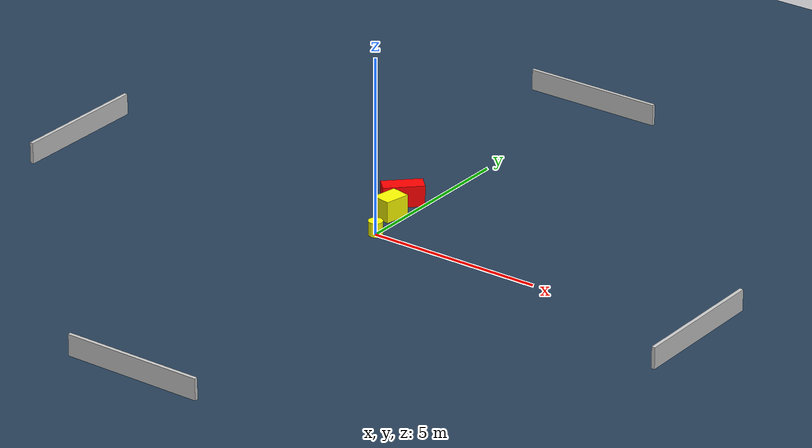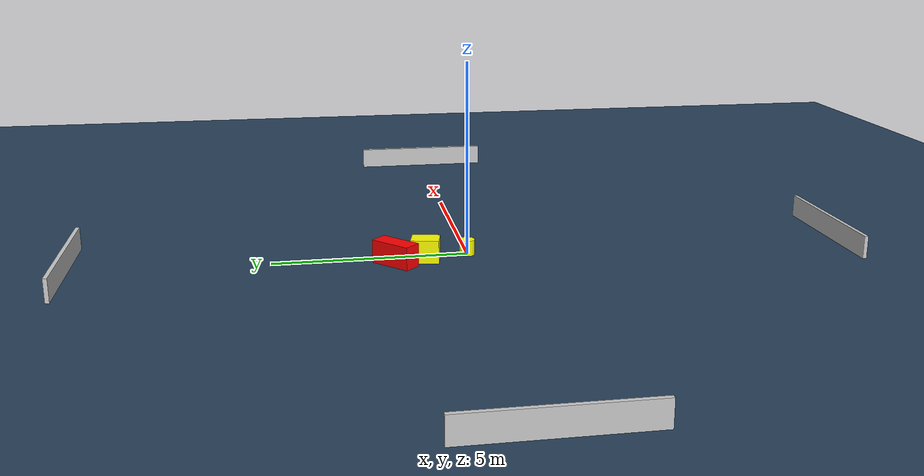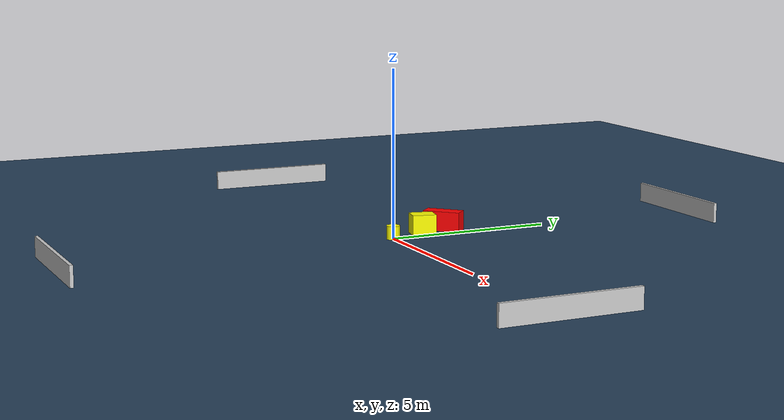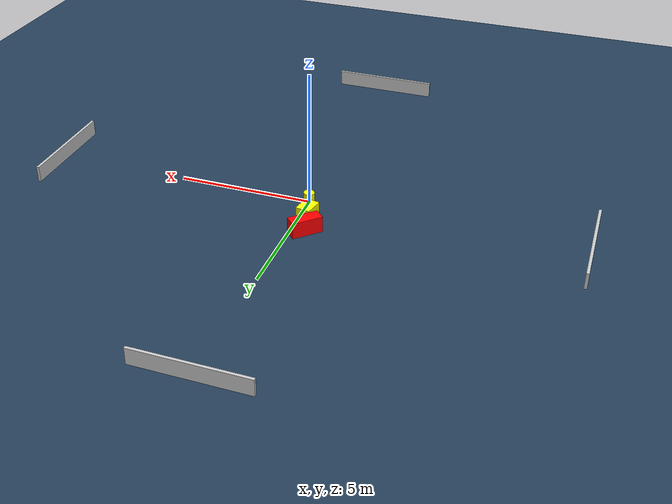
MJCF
<?xml version="1.0" ?>
<mujoco model="generated_environment">
  <option timestep="0.01" integrator="RK4" cone="elliptic"/>
  <default>
    <geom density="1"/>
  </default>
  <asset>
    <texture builtin="gradient" height="3072" name="skybox" rgb1="0.3 0.5 0.7" rgb2="0 0 0" type="skybox" width="512"/>
    <texture builtin="checker" height="300" name="groundplane" rgb1="0.2 0.3 0.4" rgb2="0.1 0.2 0.3" type="2d" width="300"/>
    <material name="groundplane" reflectance="0.2" texrepeat="5 5" texture="groundplane"/>
  </asset>
  <worldbody>
    <light dir="0 0 -1" directional="true" pos="0 0 1.5"/>
    <geom condim="3" friction="0.5 0.005 0.001" material="groundplane" name="floor" pos="0 0 0" size="0 0 0.05" type="plane"/>
    <body name="walls">
      <geom name="wall_1" condim="4" pos="-10.0 0.0 0.3" rgba="0.800000011920929 0.800000011920929 0.800000011920929 1.0" size="0.05 2.0 0.3" type="box"/>
      <geom name="wall_2" condim="4" pos="10.0 0.0 0.3" rgba="0.800000011920929 0.800000011920929 0.800000011920929 1.0" size="0.05 2.0 0.3" type="box"/>
      <geom name="wall_3" condim="4" pos="0.0 -10.0 0.3" rgba="0.800000011920929 0.800000011920929 0.800000011920929 1.0" size="2.0 0.05 0.3" type="box"/>
      <geom name="wall_4" condim="4" pos="0.0 10.0 0.3" rgba="0.800000011920929 0.800000011920929 0.800000011920929 1.0" size="2.0 0.05 0.3" type="box"/>
    </body>
    <body name="robot">
      <joint name="joint_x" type="slide" pos="0 0 0" axis="1 0 0"/>
      <joint name="joint_y" type="slide" pos="0 0 0" axis="0 1 0"/>
      <geom name="robot" type="cylinder" pos="0.0 0.0 0.2" size="0.2 0.2 0.0" mass="5.0" friction="1.0 0.005 0.0001" condim="4" rgba="1.0 1.0 0.0 1.0"/>
    </body>
    <body name="obstacle_1_movable">
      <geom name="obstacle_1_movable" condim="4" pos="-0.33933400122744606 1.1211316636899562 0.3" euler="0 0 258.6542237306824" friction="0.0 0.005 0.001" rgba="1.0 1.0 0.0 1.0" size="0.35841708606904077 0.2664007792772516 0.3" type="box" mass="0.1"/>
      <joint type="free"/>
    </body>
    <body name="obstacle_2_static">
      <geom name="obstacle_2_static" condim="4" pos="-0.5256536306846157 1.906413022576743 0.3" euler="0 0 44.22351351713504" friction="0.0 0.005 0.001" rgba="1.0 0.0 0.0 1.0" size="0.5631417669221043 0.2332399360122699 0.3" type="box"/>
    </body>
  </worldbody>
  <actuator>
    <motor name="actuator_x" joint="joint_x" gear="1" ctrlrange="-1 1"/>
    <motor name="actuator_y" joint="joint_y" gear="1" ctrlrange="-1 1"/>
  </actuator>
</mujoco>
